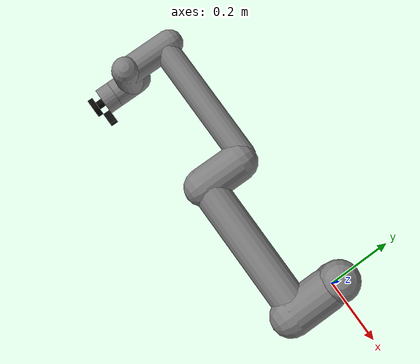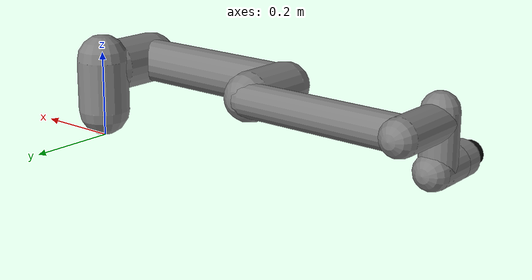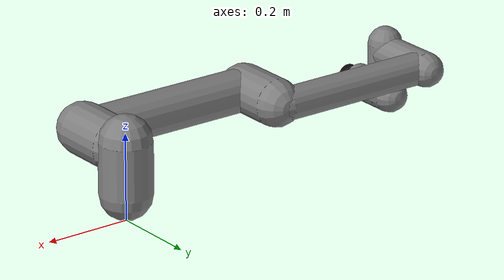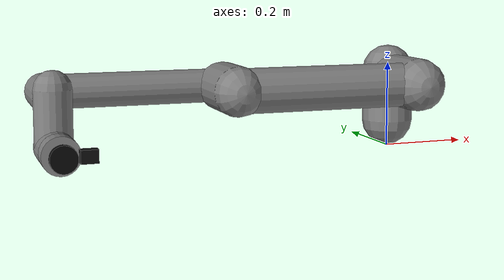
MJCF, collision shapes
<mujoco model="ur5e_suction_camera">
  <!-- 基于 MuJoCo Menagerie UR5e，增加末端相机与真空吸附执行器 -->
  <compiler angle="radian" meshdir="assets" autolimits="true"/>

  <option integrator="implicitfast" timestep="0.002"/>

  <default>
    <default class="ur5e">
      <material specular="0.5" shininess="0.25"/>
      <joint axis="0 1 0" range="-6.28319 6.28319" armature="0.1"/>
      <general gaintype="fixed" biastype="affine" ctrlrange="-6.2831 6.2831"
        gainprm="2000" biasprm="0 -2000 -400" forcerange="-150 150"/>

      <default class="size3">
        <default class="size3_limited">
          <joint range="-3.1415 3.1415"/>
          <general ctrlrange="-3.1415 3.1415"/>
        </default>
      </default>

      <default class="size1">
        <general gainprm="500" biasprm="0 -500 -100" forcerange="-28 28"/>
      </default>

      <default class="visual">
        <geom type="mesh" contype="0" conaffinity="0" group="2"/>
      </default>

      <default class="collision">
        <geom type="capsule" group="3"/>
        <default class="eef_collision">
          <geom type="cylinder"/>
        </default>
      </default>

      <site size="0.001" rgba="0.5 0.5 0.5 0.3" group="4"/>
    </default>
  </default>

  <asset>
    <material class="ur5e" name="black" rgba="0.033 0.033 0.033 1"/>
    <material class="ur5e" name="jointgray" rgba="0.278 0.278 0.278 1"/>
    <material class="ur5e" name="linkgray" rgba="0.82 0.82 0.82 1"/>
    <material class="ur5e" name="urblue" rgba="0.49 0.678 0.8 1"/>
    <material name="suction_black" rgba="0.03 0.03 0.03 1"/>
    <material name="camera_black" rgba="0.05 0.05 0.05 1"/>

    <mesh file="base_0.obj"/>
    <mesh file="base_1.obj"/>
    <mesh file="shoulder_0.obj"/>
    <mesh file="shoulder_1.obj"/>
    <mesh file="shoulder_2.obj"/>
    <mesh file="upperarm_0.obj"/>
    <mesh file="upperarm_1.obj"/>
    <mesh file="upperarm_2.obj"/>
    <mesh file="upperarm_3.obj"/>
    <mesh file="forearm_0.obj"/>
    <mesh file="forearm_1.obj"/>
    <mesh file="forearm_2.obj"/>
    <mesh file="forearm_3.obj"/>
    <mesh file="wrist1_0.obj"/>
    <mesh file="wrist1_1.obj"/>
    <mesh file="wrist1_2.obj"/>
    <mesh file="wrist2_0.obj"/>
    <mesh file="wrist2_1.obj"/>
    <mesh file="wrist2_2.obj"/>
    <mesh file="wrist3.obj"/>
  </asset>

  <worldbody>
    <light name="spotlight" mode="targetbodycom" target="wrist_2_link" pos="0 -1 2"/>

    <body name="base" quat="0 0 0 -1" childclass="ur5e">
      <inertial mass="4.0" pos="0 0 0" diaginertia="0.00443333156 0.00443333156 0.0072"/>
      <geom mesh="base_0" material="black" class="visual"/>
      <geom mesh="base_1" material="jointgray" class="visual"/>

      <body name="shoulder_link" pos="0 0 0.163">
        <inertial mass="3.7" pos="0 0 0" diaginertia="0.0102675 0.0102675 0.00666"/>
        <joint name="shoulder_pan_joint" class="size3" axis="0 0 1"/>
        <geom mesh="shoulder_0" material="urblue" class="visual"/>
        <geom mesh="shoulder_1" material="black" class="visual"/>
        <geom mesh="shoulder_2" material="jointgray" class="visual"/>
        <geom class="collision" size="0.06 0.06" pos="0 0 -0.04"/>

        <body name="upper_arm_link" pos="0 0.138 0" quat="1 0 1 0">
          <inertial mass="8.393" pos="0 0 0.2125" diaginertia="0.133886 0.133886 0.0151074"/>
          <joint name="shoulder_lift_joint" class="size3"/>
          <geom mesh="upperarm_0" material="linkgray" class="visual"/>
          <geom mesh="upperarm_1" material="black" class="visual"/>
          <geom mesh="upperarm_2" material="jointgray" class="visual"/>
          <geom mesh="upperarm_3" material="urblue" class="visual"/>
          <geom class="collision" pos="0 -0.04 0" quat="1 1 0 0" size="0.06 0.06"/>
          <geom class="collision" size="0.05 0.2" pos="0 0 0.2"/>

          <body name="forearm_link" pos="0 -0.131 0.425">
            <inertial mass="2.275" pos="0 0 0.196" diaginertia="0.0311796 0.0311796 0.004095"/>
            <joint name="elbow_joint" class="size3_limited"/>
            <geom mesh="forearm_0" material="urblue" class="visual"/>
            <geom mesh="forearm_1" material="linkgray" class="visual"/>
            <geom mesh="forearm_2" material="black" class="visual"/>
            <geom mesh="forearm_3" material="jointgray" class="visual"/>
            <geom class="collision" pos="0 0.08 0" quat="1 1 0 0" size="0.055 0.06"/>
            <geom class="collision" size="0.038 0.19" pos="0 0 0.2"/>

            <body name="wrist_1_link" pos="0 0 0.392" quat="1 0 1 0">
              <inertial mass="1.219" pos="0 0.127 0" diaginertia="0.0025599 0.0025599 0.0021942"/>
              <joint name="wrist_1_joint" class="size1"/>
              <geom mesh="wrist1_0" material="black" class="visual"/>
              <geom mesh="wrist1_1" material="urblue" class="visual"/>
              <geom mesh="wrist1_2" material="jointgray" class="visual"/>
              <geom class="collision" pos="0 0.05 0" quat="1 1 0 0" size="0.04 0.07"/>

              <body name="wrist_2_link" pos="0 0.127 0">
                <inertial mass="1.219" pos="0 0 0.1" diaginertia="0.0025599 0.0025599 0.0021942"/>
                <joint name="wrist_2_joint" axis="0 0 1" class="size1"/>
                <geom mesh="wrist2_0" material="black" class="visual"/>
                <geom mesh="wrist2_1" material="urblue" class="visual"/>
                <geom mesh="wrist2_2" material="jointgray" class="visual"/>
                <geom class="collision" size="0.04 0.06" pos="0 0 0.04"/>
                <geom class="collision" pos="0 0.02 0.1" quat="1 1 0 0" size="0.04 0.04"/>

                <body name="wrist_3_link" pos="0 0 0.1">
                  <inertial mass="0.1889" pos="0 0.0771683 0" quat="1 0 0 1"
                    diaginertia="0.000132134 9.90863e-05 9.90863e-05"/>
                  <joint name="wrist_3_joint" class="size1"/>
                  <geom material="linkgray" mesh="wrist3" class="visual"/>
                  <geom class="eef_collision" pos="0 0.08 0" quat="1 1 0 0" size="0.04 0.02"/>
                  <site name="attachment_site" pos="0 0.1 0" quat="-1 1 0 0"/>

                  <!--
                    工具坐标系沿用原 attachment_site：在 home 姿态下 +Z 轴大致朝向世界 -Z，
                    因此吸盘沿工具 +Z 方向伸出，适合从方块上方向下抓取。
                  -->
                  <body name="suction_tool" pos="0 0.1 0" quat="-1 1 0 0">
                    <!-- 工具质量取小值，避免显著改变 UR5e 动力学 -->
                    <inertial mass="0.18" pos="0 0 0.018" diaginertia="0.00012 0.00012 0.00008"/>

                    <!-- 吸盘连接座，仅视觉显示，不参与碰撞 -->
                    <geom name="suction_mount" type="cylinder" pos="0 0 0.012" size="0.012 0.012"
                      material="suction_black" contype="0" conaffinity="0" group="2"/>

                    <!--
                      真正参与接触和 adhesion 的吸盘面。
                      margin/gap 允许在数毫米范围内建立接触候选，使吸附更接近真空吸盘。
                    -->
                    <geom name="suction_pad" type="cylinder" pos="0 0 0.028" size="0.028 0.008"
                      material="suction_black" friction="1.5 0.03 0.005" condim="4"
                      contype="4" conaffinity="2" margin="0.004" gap="0.003"
                      solref="0.004 1" solimp="0.95 0.99 0.001"/>

                    <!-- 吸盘中心：IK、距离奖励和成功判定建议使用该 site -->
                    <site name="suction_site" pos="0 0 0.037" size="0.006"
                      rgba="0.1 1 0.1 0.7" group="4"/>

                    <!-- 触觉传感区域，用于判断是否已经贴到物块表面 -->
                    <site name="suction_touch_site" type="cylinder" pos="0 0 0.035"
                      size="0.029 0.004" rgba="0 1 0 0.12" group="4"/>

                    <!-- 末端相机外壳，仅用于可视化 -->
                    <geom name="eef_camera_body" type="box" pos="0.052 0 0.010" size="0.018 0.014 0.011"
                      material="camera_black" contype="0" conaffinity="0" group="2"/>

                    <!--
                      MuJoCo 相机默认沿相机局部 -Z 看。
                      这里将相机 Y 轴反向，使视线沿工具 +Z，即朝向吸盘下方。
                    -->
                    <camera name="eef_camera" pos="0.052 0 0.012"
                      xyaxes="1 0 0 0 -1 0" fovy="90" resolution="320 240"/>
                  </body>
                </body>
              </body>
            </body>
          </body>
        </body>
      </body>
    </body>
  </worldbody>

  <actuator>
    <!-- UR5e 六关节位置控制器 -->
    <general class="size3" name="shoulder_pan" joint="shoulder_pan_joint"/>
    <general class="size3" name="shoulder_lift" joint="shoulder_lift_joint"/>
    <general class="size3_limited" name="elbow" joint="elbow_joint"/>
    <general class="size1" name="wrist_1" joint="wrist_1_joint"/>
    <general class="size1" name="wrist_2" joint="wrist_2_joint"/>
    <general class="size1" name="wrist_3" joint="wrist_3_joint"/>

    <!--
      真空吸附控制：ctrl=0 关闭；ctrl=1 最大吸附。
      v6 使用 30 N 最大吸附力；对 0.12 kg 方块有充足余量，同时保持接触物理稳定。
    -->
    <adhesion name="suction" body="suction_tool" ctrlrange="0 1" gain="30"/>
  </actuator>

  <!--
    这里不再定义 keyframe。
    因为 scene.xml 会额外加入自由方块，qpos 维度会改变；
    将完整 keyframe 放到 scene.xml 可避免维度不匹配。
  -->
</mujoco>
